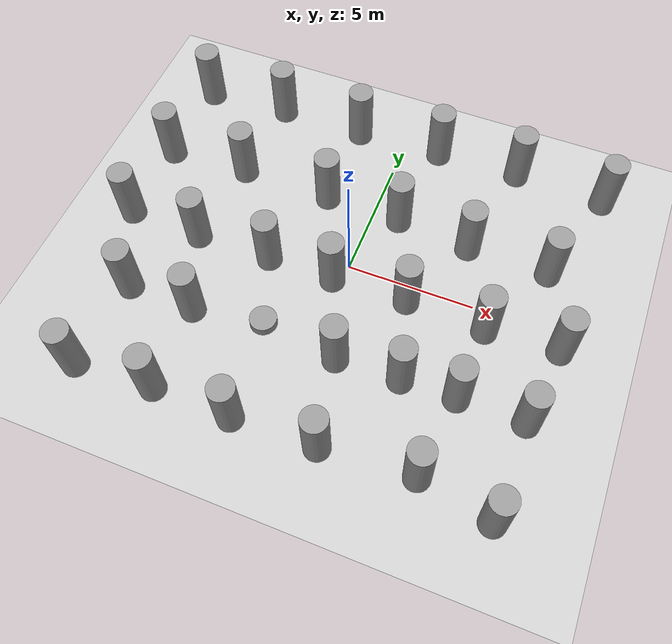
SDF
<sdf version="1.7">
 <world name="default">
  <light name="sun" type="directional">
   <pose>0 0 10 0 -0 0</pose>
   <diffuse>0.8 0.8 0.8 1</diffuse>
   <specular>0.2 0.2 0.2 1</specular>
   <attenuation>
    <range>1000</range>
    <constant>0.9</constant>
    <linear>0.01</linear>
    <quadratic>0.001</quadratic>
   </attenuation>
   <direction>-0.5 0.1 -0.9</direction>
   <spot><inner_angle>0</inner_angle><outer_angle>0</outer_angle><falloff>0</falloff></spot>
  </light>
  <model name="ground_plane">
   <static>1</static>
   <link name="link">
    <collision name="collision">
     <geometry><plane><normal>0 0 1</normal><size>100 100</size></plane></geometry>
     <surface><friction><ode><mu>100</mu><mu2>50</mu2></ode></friction></surface>
    </collision>
    <visual name="visual">
     <cast_shadows>0</cast_shadows>
     <geometry><plane><normal>0 0 1</normal><size>100 100</size></plane></geometry>
     <material>
      <script><uri>file://media/materials/scripts/gazebo.material</uri><name>Gazebo/Grey</name></script>
     </material>
    </visual>
   </link>
  </model>
  <gravity>0 0 -9.8</gravity>
  <magnetic_field>6e-06 2.3e-05 -4.2e-05</magnetic_field>
  <atmosphere type="adiabatic"/>
  <physics type="ode">
   <max_step_size>0.001</max_step_size>
   <real_time_factor>1</real_time_factor>
   <real_time_update_rate>1000</real_time_update_rate>
  </physics>
  <scene><ambient>0.4 0.4 0.4 1</ambient><background>0.7 0.7 0.7 1</background><shadows>1</shadows></scene>
  <spherical_coordinates>
   <surface_model>EARTH_WGS84</surface_model>
   <latitude_deg>0</latitude_deg>
   <longitude_deg>0</longitude_deg>
   <elevation>0</elevation>
   <heading_deg>0</heading_deg>
  </spherical_coordinates>
  <model name="unit_cylinder">
   <pose>-1.73618 -3.97077 1.34793 -0 -0 -0.000339</pose>
   <link name="link">
    <inertial>
     <mass>1</mass>
     <inertia><ixx>0.145833</ixx><ixy>0</ixy><ixz>0</ixz><iyy>0.145833</iyy><iyz>0</iyz><izz>0.125</izz></inertia>
    </inertial>
    <collision name="collision">
     <geometry><cylinder><radius>0.5</radius><length>0.370938</length></cylinder></geometry>
    </collision>
    <visual name="visual">
     <geometry><cylinder><radius>0.5</radius><length>0.370938</length></cylinder></geometry>
     <material>
      <script><name>Gazebo/Grey</name><uri>file://media/materials/scripts/gazebo.material</uri></script>
     </material>
    </visual>
   </link>
  </model>
  <model name="unit_cylinder_clone">
   <pose>0.983783 -3.92465 1.34793 0 -0 -0.000329</pose>
   <link name="link">
    <inertial>
     <mass>1</mass>
     <inertia><ixx>0.145833</ixx><ixy>0</ixy><ixz>0</ixz><iyy>0.145833</iyy><iyz>0</iyz><izz>0.125</izz></inertia>
    </inertial>
    <collision name="collision">
     <geometry><cylinder><radius>0.5</radius><length>2.69587</length></cylinder></geometry>
    </collision>
    <visual name="visual">
     <geometry><cylinder><radius>0.5</radius><length>2.69587</length></cylinder></geometry>
     <material>
      <script><name>Gazebo/Grey</name><uri>file://media/materials/scripts/gazebo.material</uri></script>
     </material>
    </visual>
   </link>
  </model>
  <model name="unit_cylinder_clone_0">
   <pose>3.45111 -3.84629 1.34793 0 -0 -0.000331</pose>
   <link name="link">
    <inertial>
     <mass>1</mass>
     <inertia><ixx>0.145833</ixx><ixy>0</ixy><ixz>0</ixz><iyy>0.145833</iyy><iyz>0</iyz><izz>0.125</izz></inertia>
    </inertial>
    <collision name="collision">
     <geometry><cylinder><radius>0.5</radius><length>2.69587</length></cylinder></geometry>
    </collision>
    <visual name="visual">
     <geometry><cylinder><radius>0.5</radius><length>2.69587</length></cylinder></geometry>
     <material>
      <script><name>Gazebo/Grey</name><uri>file://media/materials/scripts/gazebo.material</uri></script>
     </material>
    </visual>
   </link>
  </model>
  <model name="unit_cylinder_clone_1">
   <pose>5.53917 -3.79903 1.34793 0 -0 -0.00033</pose>
   <link name="link">
    <inertial>
     <mass>1</mass>
     <inertia><ixx>0.145833</ixx><ixy>0</ixy><ixz>0</ixz><iyy>0.145833</iyy><iyz>0</iyz><izz>0.125</izz></inertia>
    </inertial>
    <collision name="collision">
     <geometry><cylinder><radius>0.5</radius><length>2.69587</length></cylinder></geometry>
    </collision>
    <visual name="visual">
     <geometry><cylinder><radius>0.5</radius><length>2.69587</length></cylinder></geometry>
     <material>
      <script><name>Gazebo/Grey</name><uri>file://media/materials/scripts/gazebo.material</uri></script>
     </material>
    </visual>
   </link>
  </model>
  <model name="unit_cylinder_clone_2">
   <pose>8.08026 -3.8068 1.34793 0 -0 -0.000332</pose>
   <link name="link">
    <inertial>
     <mass>1</mass>
     <inertia><ixx>0.145833</ixx><ixy>0</ixy><ixz>0</ixz><iyy>0.145833</iyy><iyz>0</iyz><izz>0.125</izz></inertia>
    </inertial>
    <collision name="collision">
     <geometry><cylinder><radius>0.5</radius><length>2.69587</length></cylinder></geometry>
    </collision>
    <visual name="visual">
     <geometry><cylinder><radius>0.5</radius><length>2.69587</length></cylinder></geometry>
     <material>
      <script><name>Gazebo/Grey</name><uri>file://media/materials/scripts/gazebo.material</uri></script>
     </material>
    </visual>
   </link>
  </model>
  <model name="unit_cylinder_clone_3">
   <pose>8.51324 -0.68584 1.34793 -0 -0 -0.000331</pose>
   <link name="link">
    <inertial>
     <mass>1</mass>
     <inertia><ixx>0.145833</ixx><ixy>0</ixy><ixz>0</ixz><iyy>0.145833</iyy><iyz>0</iyz><izz>0.125</izz></inertia>
    </inertial>
    <collision name="collision">
     <geometry><cylinder><radius>0.5</radius><length>2.69587</length></cylinder></geometry>
    </collision>
    <visual name="visual">
     <geometry><cylinder><radius>0.5</radius><length>2.69587</length></cylinder></geometry>
     <material>
      <script><name>Gazebo/Grey</name><uri>file://media/materials/scripts/gazebo.material</uri></script>
     </material>
    </visual>
   </link>
  </model>
  <model name="unit_cylinder_clone_4">
   <pose>5.69641 -0.85673 1.34793 -0 -0 -0.000333</pose>
   <link name="link">
    <inertial>
     <mass>1</mass>
     <inertia><ixx>0.145833</ixx><ixy>0</ixy><ixz>0</ixz><iyy>0.145833</iyy><iyz>0</iyz><izz>0.125</izz></inertia>
    </inertial>
    <collision name="collision">
     <geometry><cylinder><radius>0.5</radius><length>2.69587</length></cylinder></geometry>
    </collision>
    <visual name="visual">
     <geometry><cylinder><radius>0.5</radius><length>2.69587</length></cylinder></geometry>
     <material>
      <script><name>Gazebo/Grey</name><uri>file://media/materials/scripts/gazebo.material</uri></script>
     </material>
    </visual>
   </link>
  </model>
  <model name="unit_cylinder_clone_5">
   <pose>2.58686 -0.733705 1.34793 -0 -0 -0.000334</pose>
   <link name="link">
    <inertial>
     <mass>1</mass>
     <inertia><ixx>0.145833</ixx><ixy>0</ixy><ixz>0</ixz><iyy>0.145833</iyy><iyz>0</iyz><izz>0.125</izz></inertia>
    </inertial>
    <collision name="collision">
     <geometry><cylinder><radius>0.5</radius><length>2.69587</length></cylinder></geometry>
    </collision>
    <visual name="visual">
     <geometry><cylinder><radius>0.5</radius><length>2.69587</length></cylinder></geometry>
     <material>
      <script><name>Gazebo/Grey</name><uri>file://media/materials/scripts/gazebo.material</uri></script>
     </material>
    </visual>
   </link>
  </model>
  <model name="unit_cylinder_clone_6">
   <pose>-0.377335 -0.838261 1.34793 -0 -0 -0.000334</pose>
   <link name="link">
    <inertial>
     <mass>1</mass>
     <inertia><ixx>0.145833</ixx><ixy>0</ixy><ixz>0</ixz><iyy>0.145833</iyy><iyz>0</iyz><izz>0.125</izz></inertia>
    </inertial>
    <collision name="collision">
     <geometry><cylinder><radius>0.5</radius><length>2.69587</length></cylinder></geometry>
    </collision>
    <visual name="visual">
     <geometry><cylinder><radius>0.5</radius><length>2.69587</length></cylinder></geometry>
     <material>
      <script><name>Gazebo/Grey</name><uri>file://media/materials/scripts/gazebo.material</uri></script>
     </material>
    </visual>
   </link>
  </model>
  <model name="unit_cylinder_clone_7">
   <pose>-3.02781 -0.832257 1.34793 -0 -0 -0.000335</pose>
   <link name="link">
    <inertial>
     <mass>1</mass>
     <inertia><ixx>0.145833</ixx><ixy>0</ixy><ixz>0</ixz><iyy>0.145833</iyy><iyz>0</iyz><izz>0.125</izz></inertia>
    </inertial>
    <collision name="collision">
     <geometry><cylinder><radius>0.5</radius><length>2.69587</length></cylinder></geometry>
    </collision>
    <visual name="visual">
     <geometry><cylinder><radius>0.5</radius><length>2.69587</length></cylinder></geometry>
     <material>
      <script><name>Gazebo/Grey</name><uri>file://media/materials/scripts/gazebo.material</uri></script>
     </material>
    </visual>
   </link>
  </model>
  <model name="unit_cylinder_clone_8">
   <pose>-4.78159 -3.9549 1.34793 0 -0 -0.000337</pose>
   <link name="link">
    <inertial>
     <mass>1</mass>
     <inertia><ixx>0.145833</ixx><ixy>0</ixy><ixz>0</ixz><iyy>0.145833</iyy><iyz>0</iyz><izz>0.125</izz></inertia>
    </inertial>
    <collision name="collision">
     <geometry><cylinder><radius>0.5</radius><length>2.69587</length></cylinder></geometry>
    </collision>
    <visual name="visual">
     <geometry><cylinder><radius>0.5</radius><length>2.69587</length></cylinder></geometry>
     <material>
      <script><name>Gazebo/Grey</name><uri>file://media/materials/scripts/gazebo.material</uri></script>
     </material>
    </visual>
   </link>
  </model>
  <model name="unit_cylinder_clone_9">
   <pose>-6.05848 -0.884789 1.34793 0 -0 -0.000338</pose>
   <link name="link">
    <inertial>
     <mass>1</mass>
     <inertia><ixx>0.145833</ixx><ixy>0</ixy><ixz>0</ixz><iyy>0.145833</iyy><iyz>0</iyz><izz>0.125</izz></inertia>
    </inertial>
    <collision name="collision">
     <geometry><cylinder><radius>0.5</radius><length>2.69587</length></cylinder></geometry>
    </collision>
    <visual name="visual">
     <geometry><cylinder><radius>0.5</radius><length>2.69587</length></cylinder></geometry>
     <material>
      <script><name>Gazebo/Grey</name><uri>file://media/materials/scripts/gazebo.material</uri></script>
     </material>
    </visual>
   </link>
  </model>
  <model name="unit_cylinder_clone_10">
   <pose>-7.44883 -3.90899 1.34793 -0 -0 -0.000338</pose>
   <link name="link">
    <inertial>
     <mass>1</mass>
     <inertia><ixx>0.145833</ixx><ixy>0</ixy><ixz>0</ixz><iyy>0.145833</iyy><iyz>0</iyz><izz>0.125</izz></inertia>
    </inertial>
    <collision name="collision">
     <geometry><cylinder><radius>0.5</radius><length>2.69587</length></cylinder></geometry>
    </collision>
    <visual name="visual">
     <geometry><cylinder><radius>0.5</radius><length>2.69587</length></cylinder></geometry>
     <material>
      <script><name>Gazebo/Grey</name><uri>file://media/materials/scripts/gazebo.material</uri></script>
     </material>
    </visual>
   </link>
  </model>
  <model name="unit_cylinder_clone_11">
   <pose>-9.07253 -0.783084 1.34793 -0 -0 -0.000339</pose>
   <link name="link">
    <inertial>
     <mass>1</mass>
     <inertia><ixx>0.145833</ixx><ixy>0</ixy><ixz>0</ixz><iyy>0.145833</iyy><iyz>0</iyz><izz>0.125</izz></inertia>
    </inertial>
    <collision name="collision">
     <geometry><cylinder><radius>0.5</radius><length>2.69587</length></cylinder></geometry>
    </collision>
    <visual name="visual">
     <geometry><cylinder><radius>0.5</radius><length>2.69587</length></cylinder></geometry>
     <material>
      <script><name>Gazebo/Grey</name><uri>file://media/materials/scripts/gazebo.material</uri></script>
     </material>
    </visual>
   </link>
  </model>
  <model name="unit_cylinder_clone_12">
   <pose>-8.98156 2.58373 1.34793 -0 -0 -0.000339</pose>
   <link name="link">
    <inertial>
     <mass>1</mass>
     <inertia><ixx>0.145833</ixx><ixy>0</ixy><ixz>0</ixz><iyy>0.145833</iyy><iyz>0</iyz><izz>0.125</izz></inertia>
    </inertial>
    <collision name="collision">
     <geometry><cylinder><radius>0.5</radius><length>2.69587</length></cylinder></geometry>
    </collision>
    <visual name="visual">
     <geometry><cylinder><radius>0.5</radius><length>2.69587</length></cylinder></geometry>
     <material>
      <script><name>Gazebo/Grey</name><uri>file://media/materials/scripts/gazebo.material</uri></script>
     </material>
    </visual>
   </link>
  </model>
  <model name="unit_cylinder_clone_13">
   <pose>-5.70446 2.74569 1.34793 0 -0 -0.000339</pose>
   <link name="link">
    <inertial>
     <mass>1</mass>
     <inertia><ixx>0.145833</ixx><ixy>0</ixy><ixz>0</ixz><iyy>0.145833</iyy><iyz>0</iyz><izz>0.125</izz></inertia>
    </inertial>
    <collision name="collision">
     <geometry><cylinder><radius>0.5</radius><length>2.69587</length></cylinder></geometry>
    </collision>
    <visual name="visual">
     <geometry><cylinder><radius>0.5</radius><length>2.69587</length></cylinder></geometry>
     <material>
      <script><name>Gazebo/Grey</name><uri>file://media/materials/scripts/gazebo.material</uri></script>
     </material>
    </visual>
   </link>
  </model>
  <model name="unit_cylinder_clone_14">
   <pose>-1.99841 2.71687 1.34793 -0 -0 -0.000339</pose>
   <link name="link">
    <inertial>
     <mass>1</mass>
     <inertia><ixx>0.145833</ixx><ixy>0</ixy><ixz>0</ixz><iyy>0.145833</iyy><iyz>0</iyz><izz>0.125</izz></inertia>
    </inertial>
    <collision name="collision">
     <geometry><cylinder><radius>0.5</radius><length>2.69587</length></cylinder></geometry>
    </collision>
    <visual name="visual">
     <geometry><cylinder><radius>0.5</radius><length>2.69587</length></cylinder></geometry>
     <material>
      <script><name>Gazebo/Grey</name><uri>file://media/materials/scripts/gazebo.material</uri></script>
     </material>
    </visual>
   </link>
  </model>
  <model name="unit_cylinder_clone_15">
   <pose>1.07412 2.6735 1.34793 -0 -0 -0.000339</pose>
   <link name="link">
    <inertial>
     <mass>1</mass>
     <inertia><ixx>0.145833</ixx><ixy>0</ixy><ixz>0</ixz><iyy>0.145833</iyy><iyz>0</iyz><izz>0.125</izz></inertia>
    </inertial>
    <collision name="collision">
     <geometry><cylinder><radius>0.5</radius><length>2.69587</length></cylinder></geometry>
    </collision>
    <visual name="visual">
     <geometry><cylinder><radius>0.5</radius><length>2.69587</length></cylinder></geometry>
     <material>
      <script><name>Gazebo/Grey</name><uri>file://media/materials/scripts/gazebo.material</uri></script>
     </material>
    </visual>
   </link>
  </model>
  <model name="unit_cylinder_clone_16">
   <pose>4.04741 2.40582 1.34793 -0 -0 -0.000339</pose>
   <link name="link">
    <inertial>
     <mass>1</mass>
     <inertia><ixx>0.145833</ixx><ixy>0</ixy><ixz>0</ixz><iyy>0.145833</iyy><iyz>0</iyz><izz>0.125</izz></inertia>
    </inertial>
    <collision name="collision">
     <geometry><cylinder><radius>0.5</radius><length>2.69587</length></cylinder></geometry>
    </collision>
    <visual name="visual">
     <geometry><cylinder><radius>0.5</radius><length>2.69587</length></cylinder></geometry>
     <material>
      <script><name>Gazebo/Grey</name><uri>file://media/materials/scripts/gazebo.material</uri></script>
     </material>
    </visual>
   </link>
  </model>
  <model name="unit_cylinder_clone_17">
   <pose>7.2838 2.38182 1.34793 -0 -0 -0.000339</pose>
   <link name="link">
    <inertial>
     <mass>1</mass>
     <inertia><ixx>0.145833</ixx><ixy>0</ixy><ixz>0</ixz><iyy>0.145833</iyy><iyz>0</iyz><izz>0.125</izz></inertia>
    </inertial>
    <collision name="collision">
     <geometry><cylinder><radius>0.5</radius><length>2.69587</length></cylinder></geometry>
    </collision>
    <visual name="visual">
     <geometry><cylinder><radius>0.5</radius><length>2.69587</length></cylinder></geometry>
     <material>
      <script><name>Gazebo/Grey</name><uri>file://media/materials/scripts/gazebo.material</uri></script>
     </material>
    </visual>
   </link>
  </model>
  <model name="unit_cylinder_clone_12_clone">
   <pose>-8.88049 6.18234 1.34794 0 0 -0.000339</pose>
   <link name="link">
    <inertial>
     <mass>1</mass>
     <inertia><ixx>0.145833</ixx><ixy>0</ixy><ixz>0</ixz><iyy>0.145833</iyy><iyz>0</iyz><izz>0.125</izz></inertia>
    </inertial>
    <collision name="collision">
     <geometry><cylinder><radius>0.5</radius><length>2.69587</length></cylinder></geometry>
    </collision>
    <visual name="visual">
     <geometry><cylinder><radius>0.5</radius><length>2.69587</length></cylinder></geometry>
     <material>
      <script><name>Gazebo/Grey</name><uri>file://media/materials/scripts/gazebo.material</uri></script>
     </material>
    </visual>
   </link>
  </model>
  <model name="unit_cylinder_clone_12_clone_0">
   <pose>-5.50025 6.40713 1.34794 0 0 -0.000339</pose>
   <link name="link">
    <inertial>
     <mass>1</mass>
     <inertia><ixx>0.145833</ixx><ixy>0</ixy><ixz>0</ixz><iyy>0.145833</iyy><iyz>0</iyz><izz>0.125</izz></inertia>
    </inertial>
    <collision name="collision">
     <geometry><cylinder><radius>0.5</radius><length>2.69587</length></cylinder></geometry>
    </collision>
    <visual name="visual">
     <geometry><cylinder><radius>0.5</radius><length>2.69587</length></cylinder></geometry>
     <material>
      <script><name>Gazebo/Grey</name><uri>file://media/materials/scripts/gazebo.material</uri></script>
     </material>
    </visual>
   </link>
  </model>
  <model name="unit_cylinder_clone_12_clone_1">
   <pose>-1.99135 6.38623 1.34794 0 0 -0.000339</pose>
   <link name="link">
    <inertial>
     <mass>1</mass>
     <inertia><ixx>0.145833</ixx><ixy>0</ixy><ixz>0</ixz><iyy>0.145833</iyy><iyz>0</iyz><izz>0.125</izz></inertia>
    </inertial>
    <collision name="collision">
     <geometry><cylinder><radius>0.5</radius><length>2.69587</length></cylinder></geometry>
    </collision>
    <visual name="visual">
     <geometry><cylinder><radius>0.5</radius><length>2.69587</length></cylinder></geometry>
     <material>
      <script><name>Gazebo/Grey</name><uri>file://media/materials/scripts/gazebo.material</uri></script>
     </material>
    </visual>
   </link>
  </model>
  <model name="unit_cylinder_clone_12_clone_2">
   <pose>1.49795 6.53183 1.34794 0 0 -0.000339</pose>
   <link name="link">
    <inertial>
     <mass>1</mass>
     <inertia><ixx>0.145833</ixx><ixy>0</ixy><ixz>0</ixz><iyy>0.145833</iyy><iyz>0</iyz><izz>0.125</izz></inertia>
    </inertial>
    <collision name="collision">
     <geometry><cylinder><radius>0.5</radius><length>2.69587</length></cylinder></geometry>
    </collision>
    <visual name="visual">
     <geometry><cylinder><radius>0.5</radius><length>2.69587</length></cylinder></geometry>
     <material>
      <script><name>Gazebo/Grey</name><uri>file://media/materials/scripts/gazebo.material</uri></script>
     </material>
    </visual>
   </link>
  </model>
  <model name="unit_cylinder_clone_12_clone_3">
   <pose>4.86133 6.62025 1.34794 0 0 -0.000339</pose>
   <link name="link">
    <inertial>
     <mass>1</mass>
     <inertia><ixx>0.145833</ixx><ixy>0</ixy><ixz>0</ixz><iyy>0.145833</iyy><iyz>0</iyz><izz>0.125</izz></inertia>
    </inertial>
    <collision name="collision">
     <geometry><cylinder><radius>0.5</radius><length>2.69587</length></cylinder></geometry>
    </collision>
    <visual name="visual">
     <geometry><cylinder><radius>0.5</radius><length>2.69587</length></cylinder></geometry>
     <material>
      <script><name>Gazebo/Grey</name><uri>file://media/materials/scripts/gazebo.material</uri></script>
     </material>
    </visual>
   </link>
  </model>
  <model name="unit_cylinder_clone_12_clone_4">
   <pose>8.48982 6.47329 1.34794 0 0 -0.000339</pose>
   <link name="link">
    <inertial>
     <mass>1</mass>
     <inertia><ixx>0.145833</ixx><ixy>0</ixy><ixz>0</ixz><iyy>0.145833</iyy><iyz>0</iyz><izz>0.125</izz></inertia>
    </inertial>
    <collision name="collision">
     <geometry><cylinder><radius>0.5</radius><length>2.69587</length></cylinder></geometry>
    </collision>
    <visual name="visual">
     <geometry><cylinder><radius>0.5</radius><length>2.69587</length></cylinder></geometry>
     <material>
      <script><name>Gazebo/Grey</name><uri>file://media/materials/scripts/gazebo.material</uri></script>
     </material>
    </visual>
   </link>
  </model>
  <model name="unit_cylinder_clone_12_clone_5">
   <pose>7.94661 -7.49244 1.34794 0 0 -0.000339</pose>
   <link name="link">
    <inertial>
     <mass>1</mass>
     <inertia><ixx>0.145833</ixx><ixy>0</ixy><ixz>0</ixz><iyy>0.145833</iyy><iyz>0</iyz><izz>0.125</izz></inertia>
    </inertial>
    <collision name="collision">
     <geometry><cylinder><radius>0.5</radius><length>2.69587</length></cylinder></geometry>
    </collision>
    <visual name="visual">
     <geometry><cylinder><radius>0.5</radius><length>2.69587</length></cylinder></geometry>
     <material>
      <script><name>Gazebo/Grey</name><uri>file://media/materials/scripts/gazebo.material</uri></script>
     </material>
    </visual>
   </link>
  </model>
  <model name="unit_cylinder_clone_12_clone_6">
   <pose>5.1638 -6.96039 1.34794 0 0 -0.000339</pose>
   <link name="link">
    <inertial>
     <mass>1</mass>
     <inertia><ixx>0.145833</ixx><ixy>0</ixy><ixz>0</ixz><iyy>0.145833</iyy><iyz>0</iyz><izz>0.125</izz></inertia>
    </inertial>
    <collision name="collision">
     <geometry><cylinder><radius>0.5</radius><length>2.69587</length></cylinder></geometry>
    </collision>
    <visual name="visual">
     <geometry><cylinder><radius>0.5</radius><length>2.69587</length></cylinder></geometry>
     <material>
      <script><name>Gazebo/Grey</name><uri>file://media/materials/scripts/gazebo.material</uri></script>
     </material>
    </visual>
   </link>
  </model>
  <model name="unit_cylinder_clone_12_clone_7">
   <pose>1.63435 -7.21671 1.34794 0 0 -0.000339</pose>
   <link name="link">
    <inertial>
     <mass>1</mass>
     <inertia><ixx>0.145833</ixx><ixy>0</ixy><ixz>0</ixz><iyy>0.145833</iyy><iyz>0</iyz><izz>0.125</izz></inertia>
    </inertial>
    <collision name="collision">
     <geometry><cylinder><radius>0.5</radius><length>2.69587</length></cylinder></geometry>
    </collision>
    <visual name="visual">
     <geometry><cylinder><radius>0.5</radius><length>2.69587</length></cylinder></geometry>
     <material>
      <script><name>Gazebo/Grey</name><uri>file://media/materials/scripts/gazebo.material</uri></script>
     </material>
    </visual>
   </link>
  </model>
  <model name="unit_cylinder_clone_12_clone_8">
   <pose>-1.58976 -7.33455 1.34794 0 0 -0.000339</pose>
   <link name="link">
    <inertial>
     <mass>1</mass>
     <inertia><ixx>0.145833</ixx><ixy>0</ixy><ixz>0</ixz><iyy>0.145833</iyy><iyz>0</iyz><izz>0.125</izz></inertia>
    </inertial>
    <collision name="collision">
     <geometry><cylinder><radius>0.5</radius><length>2.69587</length></cylinder></geometry>
    </collision>
    <visual name="visual">
     <geometry><cylinder><radius>0.5</radius><length>2.69587</length></cylinder></geometry>
     <material>
      <script><name>Gazebo/Grey</name><uri>file://media/materials/scripts/gazebo.material</uri></script>
     </material>
    </visual>
   </link>
  </model>
  <model name="unit_cylinder_clone_12_clone_9">
   <pose>-4.65292 -7.30783 1.34794 0 0 -0.000339</pose>
   <link name="link">
    <inertial>
     <mass>1</mass>
     <inertia><ixx>0.145833</ixx><ixy>0</ixy><ixz>0</ixz><iyy>0.145833</iyy><iyz>0</iyz><izz>0.125</izz></inertia>
    </inertial>
    <collision name="collision">
     <geometry><cylinder><radius>0.5</radius><length>2.69587</length></cylinder></geometry>
    </collision>
    <visual name="visual">
     <geometry><cylinder><radius>0.5</radius><length>2.69587</length></cylinder></geometry>
     <material>
      <script><name>Gazebo/Grey</name><uri>file://media/materials/scripts/gazebo.material</uri></script>
     </material>
    </visual>
   </link>
  </model>
  <model name="unit_cylinder_clone_12_clone_10">
   <pose>-7.71349 -7.49151 1.34794 0 0 -0.000339</pose>
   <link name="link">
    <inertial>
     <mass>1</mass>
     <inertia><ixx>0.145833</ixx><ixy>0</ixy><ixz>0</ixz><iyy>0.145833</iyy><iyz>0</iyz><izz>0.125</izz></inertia>
    </inertial>
    <collision name="collision">
     <geometry><cylinder><radius>0.5</radius><length>2.69587</length></cylinder></geometry>
    </collision>
    <visual name="visual">
     <geometry><cylinder><radius>0.5</radius><length>2.69587</length></cylinder></geometry>
     <material>
      <script><name>Gazebo/Grey</name><uri>file://media/materials/scripts/gazebo.material</uri></script>
     </material>
    </visual>
   </link>
  </model>
 </world>
</sdf>
